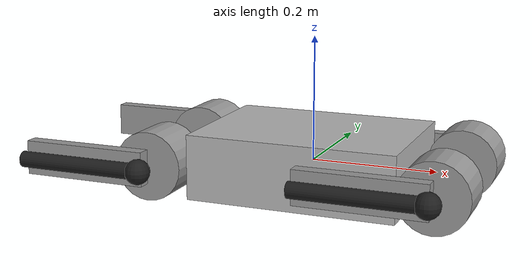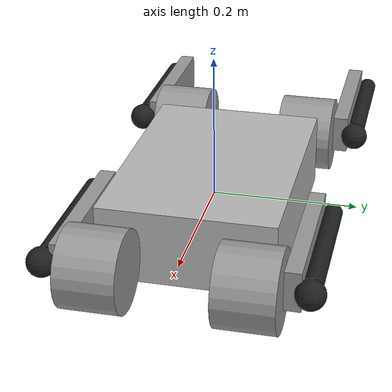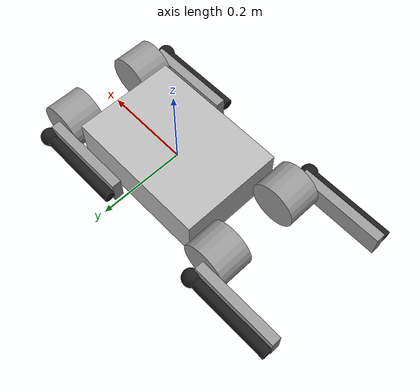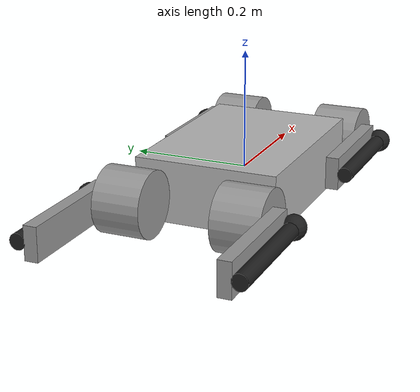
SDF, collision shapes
<sdf version='1.6'>
  <model name='spirit'>
    <link name='body'>
      <pose frame=''>0 0 0 0 -0 0</pose>
      <inertial>
        <pose frame=''>0 0 -0 0 -0 0</pose>
        <mass>7.3882</mass>
        <inertia>
          <ixx>0.0642435</ixx>
          <ixy>0</ixy>
          <ixz>0</ixz>
          <iyy>0.128487</iyy>
          <iyz>0</iyz>
          <izz>0.128487</izz>
        </inertia>
      </inertial>
      <collision name='body_collision'>
        <pose frame=''>0 0 0 0 -0 0</pose>
        <geometry>
          <box>
            <size>0.335 0.24 0.104</size>
          </box>
        </geometry>
        <surface>
          <contact>
            <ode/>
          </contact>
          <friction>
            <ode/>
          </friction>
        </surface>
      </collision>
      <visual name='body_visual'>
        <pose frame=''>0 0 0 0 -0 0</pose>
        <geometry>
          <box>
            <size>0.335 0.24 0.104</size>
          </box>
        </geometry>
        <material>
          <script>
            <uri>__default__</uri>
            <name>__default__</name>
          </script>
        </material>
      </visual>
      <visual name='body_fixed_joint_lump__text_left_visual_1'>
        <pose frame=''>-0.04 0 -0.005 0 -0 3.14159</pose>
        <geometry>
          <mesh>
            <scale>1.3 1 1.3</scale>
            <uri>model://spirit_description/meshes/Spirit40_CMU_Text_transformed.stl</uri>
          </mesh>
        </geometry>
      </visual>
      <visual name='body_fixed_joint_lump__text_right_visual_2'>
        <pose frame=''>0.04 0 -0.005 0 -0 0</pose>
        <geometry>
          <mesh>
            <scale>1.3 1 1.3</scale>
            <uri>model://spirit_description/meshes/Spirit40_CMU_Text_transformed.stl</uri>
          </mesh>
        </geometry>
      </visual>
      <gravity>1</gravity>
      <velocity_decay/>
      <gravity>1</gravity>
      <sensor name='imu_sensor' type='imu'>
        <always_on>1</always_on>
        <visualize>1</visualize>
        <topic>__default_topic_</topic>
        <plugin name='imu_plugin' filename='libgazebo_ros_imu_sensor.so'>
          <topicName>imu</topicName>
          <bodyName>body</bodyName>
          <updateRateHZ>500.0</updateRateHZ>
          <gaussianNoise>0.0</gaussianNoise>
          <xyzOffset>0 0 0</xyzOffset>
          <rpyOffset>0 0 0</rpyOffset>
          <frameName>body</frameName>
          <initialOrientationAsReference>1</initialOrientationAsReference>
        </plugin>
        <pose frame=''>0 0 0 0 -0 0</pose>
      </sensor>
    </link>
    <link name='hip2'>
      <pose frame=''>0.2263 -0.07 0 0 -0 0</pose>
      <inertial>
        <pose frame=''>0 0 0 0 -0 0</pose>
        <mass>0.575</mass>
        <inertia>
          <ixx>0.000669635</ixx>
          <ixy>0</ixy>
          <ixz>0</ixz>
          <iyy>0.000669635</iyy>
          <iyz>0</iyz>
          <izz>0.000869688</izz>
        </inertia>
      </inertial>
      <collision name='hip2_collision'>
        <pose frame=''>0 -0.028 0 1.5708 -0 0</pose>
        <geometry>
          <cylinder>
            <length>0.08</length>
            <radius>0.055</radius>
          </cylinder>
        </geometry>
        <surface>
          <contact>
            <ode/>
          </contact>
          <friction>
            <ode/>
          </friction>
        </surface>
      </collision>
      <visual name='hip2_visual'>
        <pose frame=''>0 -0.028 0 1.5708 -0 0</pose>
        <geometry>
          <cylinder>
            <length>0.08</length>
            <radius>0.055</radius>
          </cylinder>
        </geometry>
        <material>
          <script>
            <name>Gazebo/Gray</name>
            <uri>file://media/materials/scripts/gazebo.material</uri>
          </script>
        </material>
      </visual>
      <gravity>1</gravity>
      <velocity_decay/>
    </link>
    <joint name='10' type='revolute'>
      <child>hip2</child>
      <parent>body</parent>
      <axis>
        <xyz>1 0 0</xyz>
        <limit>
          <lower>-0.707</lower>
          <upper>0.707</upper>
          <effort>21</effort>
          <velocity>37.7</velocity>
        </limit>
        <dynamics>
          <damping>0</damping>
          <friction>0</friction>
          <spring_reference>0</spring_reference>
          <spring_stiffness>0</spring_stiffness>
        </dynamics>
        <use_parent_model_frame>0</use_parent_model_frame>
      </axis>
    </joint>
    <link name='upper2'>
      <pose frame=''>0.2263 -0.17098 0 0 -0 0</pose>
      <inertial>
        <pose frame=''>-0.04 0.041 0 0 -0 0</pose>
        <mass>0.792</mass>
        <inertia>
          <ixx>0.005</ixx>
          <ixy>0</ixy>
          <ixz>0</ixz>
          <iyy>0.007</iyy>
          <iyz>0</iyz>
          <izz>0.007</izz>
        </inertia>
      </inertial>
      <collision name='upper2_collision'>
        <pose frame=''>-0.103 0.022 0 0 -0 0</pose>
        <geometry>
          <box>
            <size>0.206 0.022 0.055</size>
          </box>
        </geometry>
        <surface>
          <contact>
            <ode/>
          </contact>
          <friction>
            <ode/>
          </friction>
        </surface>
      </collision>
      <visual name='upper2_visual'>
        <pose frame=''>-0.103 0.022 0 0 -0 0</pose>
        <geometry>
          <box>
            <size>0.206 0.022 0.055</size>
          </box>
        </geometry>
        <material>
          <script>
            <name>Gazebo/Gray</name>
            <uri>file://media/materials/scripts/gazebo.material</uri>
          </script>
        </material>
      </visual>
      <gravity>1</gravity>
      <velocity_decay/>
    </link>
    <joint name='4' type='revolute'>
      <child>upper2</child>
      <parent>hip2</parent>
      <axis>
        <xyz>0 -1 0</xyz>
        <limit>
          <lower>-1.57</lower>
          <upper>3.14</upper>
          <effort>21</effort>
          <velocity>37.7</velocity>
        </limit>
        <dynamics>
          <damping>0</damping>
          <friction>0</friction>
          <spring_reference>0</spring_reference>
          <spring_stiffness>0</spring_stiffness>
        </dynamics>
        <use_parent_model_frame>0</use_parent_model_frame>
      </axis>
    </joint>
    <link name='lower2'>
      <pose frame=''>0.0203 -0.17098 0 0 -0 0</pose>
      <inertial>
        <pose frame=''>0.107405 0 0 0 -0 0</pose>
        <mass>0.111</mass>
        <inertia>
          <ixx>3.8e-05</ixx>
          <ixy>0</ixy>
          <ixz>0</ixz>
          <iyy>0.000663597</iyy>
          <iyz>0</iyz>
          <izz>0.000663597</izz>
        </inertia>
      </inertial>
      <collision name='lower2_collision'>
        <pose frame=''>0.103 0 0 3.14159 1.57079 3.14159</pose>
        <geometry>
          <cylinder>
            <length>0.206</length>
            <radius>0.013</radius>
          </cylinder>
        </geometry>
        <surface>
          <contact>
            <ode/>
          </contact>
          <friction>
            <ode/>
          </friction>
        </surface>
      </collision>
      <collision name='lower2_fixed_joint_lump__toe2_collision_1'>
        <pose frame=''>0.206 0 0 0 -0 0</pose>
        <geometry>
          <sphere>
            <radius>0.02</radius>
          </sphere>
        </geometry>
        <surface>
          <bounce>
            <restitution_coefficient>0</restitution_coefficient>
            <threshold>1e+06</threshold>
          </bounce>
          <friction>
            <ode>
              <mu>0.5</mu>
              <mu2>0.5</mu2>
            </ode>
            <bullet>
              <rolling_friction>0.3</rolling_friction>
              <friction2>50</friction2>
            </bullet>
          </friction>
          <contact>
            <bullet>
              <kp>30000</kp>
              <kd>1000</kd>
              <split_impulse>1</split_impulse>
              <split_impulse_penetration_threshold>-0.01</split_impulse_penetration_threshold>
            </bullet>
            <ode>
              <kp>30000</kp>
              <kd>1000</kd>
            </ode>
          </contact>
        </surface>
      </collision>
      <visual name='lower2_visual'>
        <pose frame=''>0.103 0 0 3.14159 1.57079 3.14159</pose>
        <geometry>
          <cylinder>
            <length>0.206</length>
            <radius>0.013</radius>
          </cylinder>
        </geometry>
        <material>
          <script>
            <name>Gazebo/Black</name>
            <uri>file://media/materials/scripts/gazebo.material</uri>
          </script>
        </material>
      </visual>
      <visual name='lower2_fixed_joint_lump__toe2_visual_1'>
        <pose frame=''>0.206 0 0 0 -0 0</pose>
        <geometry>
          <sphere>
            <radius>0.02</radius>
          </sphere>
        </geometry>
        <material>
          <script>
            <name>Gazebo/DarkGray</name>
            <uri>file://media/materials/scripts/gazebo.material</uri>
          </script>
        </material>
      </visual>
      <velocity_decay/>
      <gravity>1</gravity>
      <velocity_decay/>
    </link>
    <joint name='5' type='revolute'>
      <child>lower2</child>
      <parent>upper2</parent>
      <axis>
        <xyz>0 1 0</xyz>
        <limit>
          <lower>-6.28</lower>
          <upper>6.28</upper>
          <effort>32</effort>
          <velocity>25.1</velocity>
        </limit>
        <dynamics>
          <damping>0</damping>
          <friction>0</friction>
          <spring_reference>0</spring_reference>
          <spring_stiffness>0</spring_stiffness>
        </dynamics>
        <use_parent_model_frame>0</use_parent_model_frame>
      </axis>
    </joint>
    <link name='hip3'>
      <pose frame=''>-0.2263 -0.07 0 0 -0 0</pose>
      <inertial>
        <pose frame=''>0 0 0 0 -0 0</pose>
        <mass>0.575</mass>
        <inertia>
          <ixx>0.000669635</ixx>
          <ixy>0</ixy>
          <ixz>0</ixz>
          <iyy>0.000669635</iyy>
          <iyz>0</iyz>
          <izz>0.000869688</izz>
        </inertia>
      </inertial>
      <collision name='hip3_collision'>
        <pose frame=''>0 -0.028 0 1.5708 -0 0</pose>
        <geometry>
          <cylinder>
            <length>0.08</length>
            <radius>0.055</radius>
          </cylinder>
        </geometry>
        <surface>
          <contact>
            <ode/>
          </contact>
          <friction>
            <ode/>
          </friction>
        </surface>
      </collision>
      <visual name='hip3_visual'>
        <pose frame=''>-0 -0.028 0 1.5708 -0 0</pose>
        <geometry>
          <cylinder>
            <length>0.08</length>
            <radius>0.055</radius>
          </cylinder>
        </geometry>
        <material>
          <script>
            <name>Gazebo/Gray</name>
            <uri>file://media/materials/scripts/gazebo.material</uri>
          </script>
        </material>
      </visual>
      <gravity>1</gravity>
      <velocity_decay/>
    </link>
    <joint name='11' type='revolute'>
      <child>hip3</child>
      <parent>body</parent>
      <axis>
        <xyz>1 0 0</xyz>
        <limit>
          <lower>-0.707</lower>
          <upper>0.707</upper>
          <effort>21</effort>
          <velocity>37.7</velocity>
        </limit>
        <dynamics>
          <damping>0</damping>
          <friction>0</friction>
          <spring_reference>0</spring_reference>
          <spring_stiffness>0</spring_stiffness>
        </dynamics>
        <use_parent_model_frame>0</use_parent_model_frame>
      </axis>
    </joint>
    <link name='upper3'>
      <pose frame=''>-0.2263 -0.17098 0 0 -0 0</pose>
      <inertial>
        <pose frame=''>-0.04 0.041 0 0 -0 0</pose>
        <mass>0.792</mass>
        <inertia>
          <ixx>0.005</ixx>
          <ixy>0</ixy>
          <ixz>0</ixz>
          <iyy>0.007</iyy>
          <iyz>0</iyz>
          <izz>0.007</izz>
        </inertia>
      </inertial>
      <collision name='upper3_collision'>
        <pose frame=''>-0.103 0.022 0 0 -0 0</pose>
        <geometry>
          <box>
            <size>0.206 0.022 0.055</size>
          </box>
        </geometry>
        <surface>
          <contact>
            <ode/>
          </contact>
          <friction>
            <ode/>
          </friction>
        </surface>
      </collision>
      <visual name='upper3_visual'>
        <pose frame=''>-0.103 0.022 0 0 -0 0</pose>
        <geometry>
          <box>
            <size>0.206 0.022 0.055</size>
          </box>
        </geometry>
        <material>
          <script>
            <name>Gazebo/Gray</name>
            <uri>file://media/materials/scripts/gazebo.material</uri>
          </script>
        </material>
      </visual>
      <gravity>1</gravity>
      <velocity_decay/>
    </link>
    <joint name='6' type='revolute'>
      <child>upper3</child>
      <parent>hip3</parent>
      <axis>
        <xyz>0 -1 0</xyz>
        <limit>
          <lower>-3.14</lower>
          <upper>1.57</upper>
          <effort>21</effort>
          <velocity>37.7</velocity>
        </limit>
        <dynamics>
          <damping>0</damping>
          <friction>0</friction>
          <spring_reference>0</spring_reference>
          <spring_stiffness>0</spring_stiffness>
        </dynamics>
        <use_parent_model_frame>0</use_parent_model_frame>
      </axis>
    </joint>
    <link name='lower3'>
      <pose frame=''>-0.4323 -0.17098 0 0 -0 0</pose>
      <inertial>
        <pose frame=''>0.107405 0 0 0 -0 0</pose>
        <mass>0.111</mass>
        <inertia>
          <ixx>3.8e-05</ixx>
          <ixy>0</ixy>
          <ixz>0</ixz>
          <iyy>0.000663597</iyy>
          <iyz>0</iyz>
          <izz>0.000663597</izz>
        </inertia>
      </inertial>
      <collision name='lower3_collision'>
        <pose frame=''>0.103 0 0 3.14159 1.57079 3.14159</pose>
        <geometry>
          <cylinder>
            <length>0.206</length>
            <radius>0.013</radius>
          </cylinder>
        </geometry>
        <surface>
          <contact>
            <ode/>
          </contact>
          <friction>
            <ode/>
          </friction>
        </surface>
      </collision>
      <collision name='lower3_fixed_joint_lump__toe3_collision_1'>
        <pose frame=''>0.206 0 0 0 -0 0</pose>
        <geometry>
          <sphere>
            <radius>0.02</radius>
          </sphere>
        </geometry>
        <surface>
          <bounce>
            <restitution_coefficient>0</restitution_coefficient>
            <threshold>1e+06</threshold>
          </bounce>
          <friction>
            <ode>
              <mu>0.5</mu>
              <mu2>0.5</mu2>
            </ode>
            <bullet>
              <rolling_friction>0.3</rolling_friction>
              <friction2>50</friction2>
            </bullet>
          </friction>
          <contact>
            <bullet>
              <kp>30000</kp>
              <kd>1000</kd>
              <split_impulse>1</split_impulse>
              <split_impulse_penetration_threshold>-0.01</split_impulse_penetration_threshold>
            </bullet>
            <ode>
              <kp>30000</kp>
              <kd>1000</kd>
            </ode>
          </contact>
        </surface>
      </collision>
      <visual name='lower3_visual'>
        <pose frame=''>0.103 0 0 3.14159 1.57079 3.14159</pose>
        <geometry>
          <cylinder>
            <length>0.206</length>
            <radius>0.013</radius>
          </cylinder>
        </geometry>
        <material>
          <script>
            <name>Gazebo/Black</name>
            <uri>file://media/materials/scripts/gazebo.material</uri>
          </script>
        </material>
      </visual>
      <visual name='lower3_fixed_joint_lump__toe3_visual_1'>
        <pose frame=''>0.206 0 0 0 -0 0</pose>
        <geometry>
          <sphere>
            <radius>0.02</radius>
          </sphere>
        </geometry>
        <material>
          <script>
            <name>Gazebo/DarkGray</name>
            <uri>file://media/materials/scripts/gazebo.material</uri>
          </script>
        </material>
      </visual>
      <velocity_decay/>
      <gravity>1</gravity>
      <velocity_decay/>
    </link>
    <joint name='7' type='revolute'>
      <child>lower3</child>
      <parent>upper3</parent>
      <axis>
        <xyz>0 1 0</xyz>
        <limit>
          <lower>-6.28</lower>
          <upper>6.28</upper>
          <effort>32</effort>
          <velocity>25.1</velocity>
        </limit>
        <dynamics>
          <damping>0</damping>
          <friction>0</friction>
          <spring_reference>0</spring_reference>
          <spring_stiffness>0</spring_stiffness>
        </dynamics>
        <use_parent_model_frame>0</use_parent_model_frame>
      </axis>
    </joint>
    <link name='hip0'>
      <pose frame=''>0.2263 0.07 0 0 -0 0</pose>
      <inertial>
        <pose frame=''>0 0 0 0 -0 0</pose>
        <mass>0.575</mass>
        <inertia>
          <ixx>0.000669635</ixx>
          <ixy>0</ixy>
          <ixz>0</ixz>
          <iyy>0.000669635</iyy>
          <iyz>0</iyz>
          <izz>0.000869688</izz>
        </inertia>
      </inertial>
      <collision name='hip0_collision'>
        <pose frame=''>0 0.028 0 1.5708 -0 0</pose>
        <geometry>
          <cylinder>
            <length>0.08</length>
            <radius>0.055</radius>
          </cylinder>
        </geometry>
        <surface>
          <contact>
            <ode/>
          </contact>
          <friction>
            <ode/>
          </friction>
        </surface>
      </collision>
      <visual name='hip0_visual'>
        <pose frame=''>0 0.028 0 1.5708 -0 0</pose>
        <geometry>
          <cylinder>
            <length>0.08</length>
            <radius>0.055</radius>
          </cylinder>
        </geometry>
        <material>
          <script>
            <name>Gazebo/Gray</name>
            <uri>file://media/materials/scripts/gazebo.material</uri>
          </script>
        </material>
      </visual>
      <gravity>1</gravity>
      <velocity_decay/>
    </link>
    <joint name='8' type='revolute'>
      <child>hip0</child>
      <parent>body</parent>
      <axis>
        <xyz>1 0 0</xyz>
        <limit>
          <lower>-0.707</lower>
          <upper>0.707</upper>
          <effort>21</effort>
          <velocity>37.7</velocity>
        </limit>
        <dynamics>
          <damping>0</damping>
          <friction>0</friction>
          <spring_reference>0</spring_reference>
          <spring_stiffness>0</spring_stiffness>
        </dynamics>
        <use_parent_model_frame>0</use_parent_model_frame>
      </axis>
    </joint>
    <link name='upper0'>
      <pose frame=''>0.2263 0.17098 0 0 -0 0</pose>
      <inertial>
        <pose frame=''>-0.04 -0.041 0 0 -0 0</pose>
        <mass>0.792</mass>
        <inertia>
          <ixx>0.005</ixx>
          <ixy>0</ixy>
          <ixz>0</ixz>
          <iyy>0.007</iyy>
          <iyz>0</iyz>
          <izz>0.007</izz>
        </inertia>
      </inertial>
      <collision name='upper0_collision'>
        <pose frame=''>-0.103 -0.022 0 0 -0 0</pose>
        <geometry>
          <box>
            <size>0.206 0.022 0.055</size>
          </box>
        </geometry>
        <surface>
          <contact>
            <ode/>
          </contact>
          <friction>
            <ode/>
          </friction>
        </surface>
      </collision>
      <visual name='upper0_visual'>
        <pose frame=''>-0.103 -0.022 0 0 -0 0</pose>
        <geometry>
          <box>
            <size>0.206 0.022 0.055</size>
          </box>
        </geometry>
        <material>
          <script>
            <name>Gazebo/Gray</name>
            <uri>file://media/materials/scripts/gazebo.material</uri>
          </script>
        </material>
      </visual>
      <gravity>1</gravity>
      <velocity_decay/>
    </link>
    <joint name='0' type='revolute'>
      <child>upper0</child>
      <parent>hip0</parent>
      <axis>
        <xyz>0 -1 0</xyz>
        <limit>
          <lower>-1.57</lower>
          <upper>3.14</upper>
          <effort>21</effort>
          <velocity>37.7</velocity>
        </limit>
        <dynamics>
          <damping>0</damping>
          <friction>0</friction>
          <spring_reference>0</spring_reference>
          <spring_stiffness>0</spring_stiffness>
        </dynamics>
        <use_parent_model_frame>0</use_parent_model_frame>
      </axis>
    </joint>
    <link name='lower0'>
      <pose frame=''>0.0203 0.17098 0 0 -0 0</pose>
      <inertial>
        <pose frame=''>0.107405 0 0 0 -0 0</pose>
        <mass>0.111</mass>
        <inertia>
          <ixx>3.8e-05</ixx>
          <ixy>0</ixy>
          <ixz>0</ixz>
          <iyy>0.000663597</iyy>
          <iyz>0</iyz>
          <izz>0.000663597</izz>
        </inertia>
      </inertial>
      <collision name='lower0_collision'>
        <pose frame=''>0.103 0 0 3.14159 1.57079 3.14159</pose>
        <geometry>
          <cylinder>
            <length>0.206</length>
            <radius>0.013</radius>
          </cylinder>
        </geometry>
        <surface>
          <contact>
            <ode/>
          </contact>
          <friction>
            <ode/>
          </friction>
        </surface>
      </collision>
      <collision name='lower0_fixed_joint_lump__toe0_collision_1'>
        <pose frame=''>0.206 0 0 0 -0 0</pose>
        <geometry>
          <sphere>
            <radius>0.02</radius>
          </sphere>
        </geometry>
        <surface>
          <bounce>
            <restitution_coefficient>0</restitution_coefficient>
            <threshold>1e+06</threshold>
          </bounce>
          <friction>
            <ode>
              <mu>0.5</mu>
              <mu2>0.5</mu2>
            </ode>
            <bullet>
              <rolling_friction>0.3</rolling_friction>
              <friction2>50</friction2>
            </bullet>
          </friction>
          <contact>
            <bullet>
              <kp>30000</kp>
              <kd>1000</kd>
              <split_impulse>1</split_impulse>
              <split_impulse_penetration_threshold>-0.01</split_impulse_penetration_threshold>
            </bullet>
            <ode>
              <kp>30000</kp>
              <kd>1000</kd>
            </ode>
          </contact>
        </surface>
      </collision>
      <visual name='lower0_visual'>
        <pose frame=''>0.103 0 0 3.14159 1.57079 3.14159</pose>
        <geometry>
          <cylinder>
            <length>0.206</length>
            <radius>0.013</radius>
          </cylinder>
        </geometry>
        <material>
          <script>
            <name>Gazebo/Black</name>
            <uri>file://media/materials/scripts/gazebo.material</uri>
          </script>
        </material>
      </visual>
      <visual name='lower0_fixed_joint_lump__toe0_visual_1'>
        <pose frame=''>0.206 0 0 0 -0 0</pose>
        <geometry>
          <sphere>
            <radius>0.02</radius>
          </sphere>
        </geometry>
        <material>
          <script>
            <name>Gazebo/DarkGray</name>
            <uri>file://media/materials/scripts/gazebo.material</uri>
          </script>
        </material>
      </visual>
      <velocity_decay/>
      <gravity>1</gravity>
      <velocity_decay/>
    </link>
    <joint name='1' type='revolute'>
      <child>lower0</child>
      <parent>upper0</parent>
      <axis>
        <xyz>0 1 0</xyz>
        <limit>
          <lower>-6.28</lower>
          <upper>6.28</upper>
          <effort>32</effort>
          <velocity>25.1</velocity>
        </limit>
        <dynamics>
          <damping>0</damping>
          <friction>0</friction>
          <spring_reference>0</spring_reference>
          <spring_stiffness>0</spring_stiffness>
        </dynamics>
        <use_parent_model_frame>0</use_parent_model_frame>
      </axis>
    </joint>
    <link name='hip1'>
      <pose frame=''>-0.2263 0.07 0 0 -0 0</pose>
      <inertial>
        <pose frame=''>0 0 0 0 -0 0</pose>
        <mass>0.575</mass>
        <inertia>
          <ixx>0.000669635</ixx>
          <ixy>0</ixy>
          <ixz>0</ixz>
          <iyy>0.000669635</iyy>
          <iyz>0</iyz>
          <izz>0.000869688</izz>
        </inertia>
      </inertial>
      <collision name='hip1_collision'>
        <pose frame=''>0 0.028 0 1.5708 -0 0</pose>
        <geometry>
          <cylinder>
            <length>0.08</length>
            <radius>0.055</radius>
          </cylinder>
        </geometry>
        <surface>
          <contact>
            <ode/>
          </contact>
          <friction>
            <ode/>
          </friction>
        </surface>
      </collision>
      <visual name='hip1_visual'>
        <pose frame=''>-0 0.028 0 1.5708 -0 0</pose>
        <geometry>
          <cylinder>
            <length>0.08</length>
            <radius>0.055</radius>
          </cylinder>
        </geometry>
        <material>
          <script>
            <name>Gazebo/Gray</name>
            <uri>file://media/materials/scripts/gazebo.material</uri>
          </script>
        </material>
      </visual>
      <gravity>1</gravity>
      <velocity_decay/>
    </link>
    <joint name='9' type='revolute'>
      <child>hip1</child>
      <parent>body</parent>
      <axis>
        <xyz>1 0 0</xyz>
        <limit>
          <lower>-0.707</lower>
          <upper>0.707</upper>
          <effort>21</effort>
          <velocity>37.7</velocity>
        </limit>
        <dynamics>
          <damping>0</damping>
          <friction>0</friction>
          <spring_reference>0</spring_reference>
          <spring_stiffness>0</spring_stiffness>
        </dynamics>
        <use_parent_model_frame>0</use_parent_model_frame>
      </axis>
    </joint>
    <link name='upper1'>
      <pose frame=''>-0.2263 0.17098 0 0 -0 0</pose>
      <inertial>
        <pose frame=''>-0.04 -0.041 0 0 -0 0</pose>
        <mass>0.792</mass>
        <inertia>
          <ixx>0.005</ixx>
          <ixy>0</ixy>
          <ixz>0</ixz>
          <iyy>0.007</iyy>
          <iyz>0</iyz>
          <izz>0.007</izz>
        </inertia>
      </inertial>
      <collision name='upper1_collision'>
        <pose frame=''>-0.103 -0.022 0 0 -0 0</pose>
        <geometry>
          <box>
            <size>0.206 0.022 0.055</size>
          </box>
        </geometry>
        <surface>
          <contact>
            <ode/>
          </contact>
          <friction>
            <ode/>
          </friction>
        </surface>
      </collision>
      <visual name='upper1_visual'>
        <pose frame=''>-0.103 -0.022 0 0 -0 0</pose>
        <geometry>
          <box>
            <size>0.206 0.022 0.055</size>
          </box>
        </geometry>
        <material>
          <script>
            <name>Gazebo/Gray</name>
            <uri>file://media/materials/scripts/gazebo.material</uri>
          </script>
        </material>
      </visual>
      <gravity>1</gravity>
      <velocity_decay/>
    </link>
    <joint name='2' type='revolute'>
      <child>upper1</child>
      <parent>hip1</parent>
      <axis>
        <xyz>0 -1 0</xyz>
        <limit>
          <lower>-3.14</lower>
          <upper>1.57</upper>
          <effort>21</effort>
          <velocity>37.7</velocity>
        </limit>
        <dynamics>
          <damping>0</damping>
          <friction>0</friction>
          <spring_reference>0</spring_reference>
          <spring_stiffness>0</spring_stiffness>
        </dynamics>
        <use_parent_model_frame>0</use_parent_model_frame>
      </axis>
    </joint>
    <link name='lower1'>
      <pose frame=''>-0.4323 0.17098 0 0 -0 0</pose>
      <inertial>
        <pose frame=''>0.107405 0 0 0 -0 0</pose>
        <mass>0.111</mass>
        <inertia>
          <ixx>3.8e-05</ixx>
          <ixy>0</ixy>
          <ixz>0</ixz>
          <iyy>0.000663597</iyy>
          <iyz>0</iyz>
          <izz>0.000663597</izz>
        </inertia>
      </inertial>
      <collision name='lower1_collision'>
        <pose frame=''>0.103 0 0 3.14159 1.57079 3.14159</pose>
        <geometry>
          <cylinder>
            <length>0.206</length>
            <radius>0.013</radius>
          </cylinder>
        </geometry>
        <surface>
          <contact>
            <ode/>
          </contact>
          <friction>
            <ode/>
          </friction>
        </surface>
      </collision>
      <collision name='lower1_fixed_joint_lump__toe1_collision_1'>
        <pose frame=''>0.206 0 0 0 -0 0</pose>
        <geometry>
          <sphere>
            <radius>0.02</radius>
          </sphere>
        </geometry>
        <surface>
          <bounce>
            <restitution_coefficient>0</restitution_coefficient>
            <threshold>1e+06</threshold>
          </bounce>
          <friction>
            <ode>
              <mu>0.5</mu>
              <mu2>0.5</mu2>
            </ode>
            <bullet>
              <rolling_friction>0.3</rolling_friction>
              <friction2>50</friction2>
            </bullet>
          </friction>
          <contact>
            <bullet>
              <kp>30000</kp>
              <kd>1000</kd>
              <split_impulse>1</split_impulse>
              <split_impulse_penetration_threshold>-0.01</split_impulse_penetration_threshold>
            </bullet>
            <ode>
              <kp>30000</kp>
              <kd>1000</kd>
            </ode>
          </contact>
        </surface>
      </collision>
      <visual name='lower1_visual'>
        <pose frame=''>0.103 0 0 3.14159 1.57079 3.14159</pose>
        <geometry>
          <cylinder>
            <length>0.206</length>
            <radius>0.013</radius>
          </cylinder>
        </geometry>
        <material>
          <script>
            <name>Gazebo/Black</name>
            <uri>file://media/materials/scripts/gazebo.material</uri>
          </script>
        </material>
      </visual>
      <visual name='lower1_fixed_joint_lump__toe1_visual_1'>
        <pose frame=''>0.206 0 0 0 -0 0</pose>
        <geometry>
          <sphere>
            <radius>0.02</radius>
          </sphere>
        </geometry>
        <material>
          <script>
            <name>Gazebo/DarkGray</name>
            <uri>file://media/materials/scripts/gazebo.material</uri>
          </script>
        </material>
      </visual>
      <velocity_decay/>
      <gravity>1</gravity>
      <velocity_decay/>
    </link>
    <joint name='3' type='revolute'>
      <child>lower1</child>
      <parent>upper1</parent>
      <axis>
        <xyz>0 1 0</xyz>
        <limit>
          <lower>-6.28</lower>
          <upper>6.28</upper>
          <effort>32</effort>
          <velocity>25.1</velocity>
        </limit>
        <dynamics>
          <damping>0</damping>
          <friction>0</friction>
          <spring_reference>0</spring_reference>
          <spring_stiffness>0</spring_stiffness>
        </dynamics>
        <use_parent_model_frame>0</use_parent_model_frame>
      </axis>
    </joint>
  </model>
</sdf>
